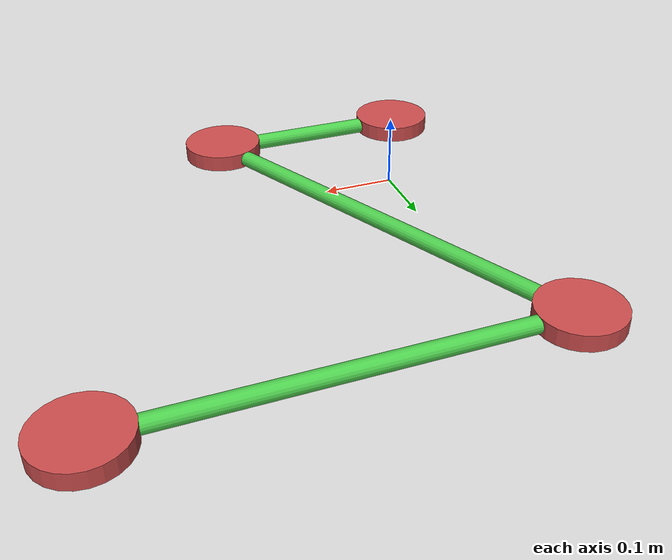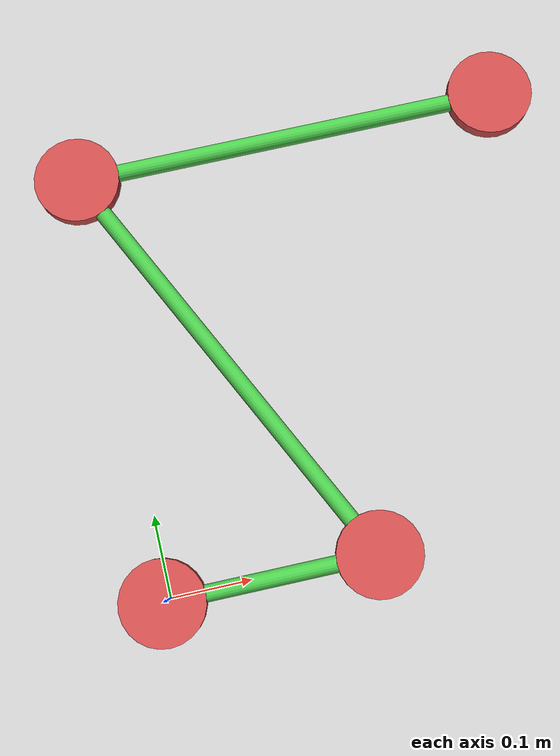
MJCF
<?xml version='1.0' encoding='UTF-8'?>
<mujoco>
  <option gravity="0 0 -9.81" timestep="0.002">
    <flag warmstart="enable"/>
  </option>
  <visual>
    <global offwidth="800" offheight="800"/>
    <quality shadowsize="4096"/>
    <map force="0.1" fogstart="3" fogend="5" znear="0.1" zfar="50"/>
  </visual>
  <asset>
    <texture type="skybox" builtin="gradient" rgb1="0.3 0.5 0.7" rgb2="0 0 0" width="512" height="512"/>
    <material name="arm1" rgba="0.8 0.3 0.3 1"/>
    <material name="arm2" rgba="0.3 0.8 0.3 1"/>
    <material name="arm3" rgba="0.3 0.3 0.8 1"/>
  </asset>
  <worldbody>
    <body name="base" pos="0.0 0.0 0.1">
      <geom type="cylinder" size="0.05 0.01" material="arm1"/>
      <joint name="joint1" type="hinge" axis="0 0 1" pos="0 0 -0.05"/>
      <site name="c1" pos="0 0 0"/>
      <geom type="capsule" size="0.01" fromto="0 0 0 0.25 0.0 0" material="arm2"/>
      <body name="link2" pos="0.25 0.0 0">
        <geom type="cylinder" size="0.05 0.01" material="arm1"/>
        <joint name="joint2" type="hinge" axis="0 0 1" pos="0 0 -0.05"/>
        <site name="c2" pos="0 0 0"/>
        <geom type="capsule" size="0.01" fromto="0 0 0 -0.25 0.5 0" material="arm2"/>
        <body name="link3" pos="-0.25 0.5 0">
          <geom type="cylinder" size="0.05 0.01" material="arm1"/>
          <joint name="joint3" type="hinge" axis="0 0 1" pos="0 0 -0.05"/>
          <site name="c3" pos="0 0 0"/>
          <geom type="capsule" size="0.01" fromto="0 0 0 0.5 0.0 0" material="arm2"/>
          <body name="end4" pos="0.5 0.0 0">
            <geom type="cylinder" size="0.05 0.01" material="arm1"/>
            <joint name="joint4" type="hinge" axis="0 0 1" pos="0 0 -0.05"/>
            <site name="c4" pos="0 0 0"/>
          </body>
        </body>
      </body>
    </body>
  </worldbody>
  <actuator>
    <motor joint="joint1" name="motor_joint1" gear="0.5" ctrlrange="-0.0005 0.0005"/>
  </actuator>
  <tendon>
    <spatial name="connection_3_4" limited="true" range="0 1e-07" width="0.003" rgba="0.8 0.8 0.8 1">
      <site site="c3"/>
      <site site="c4"/>
    </spatial>
  </tendon>
</mujoco>
